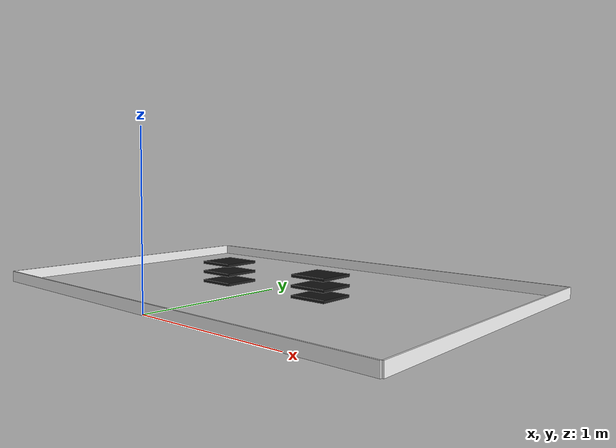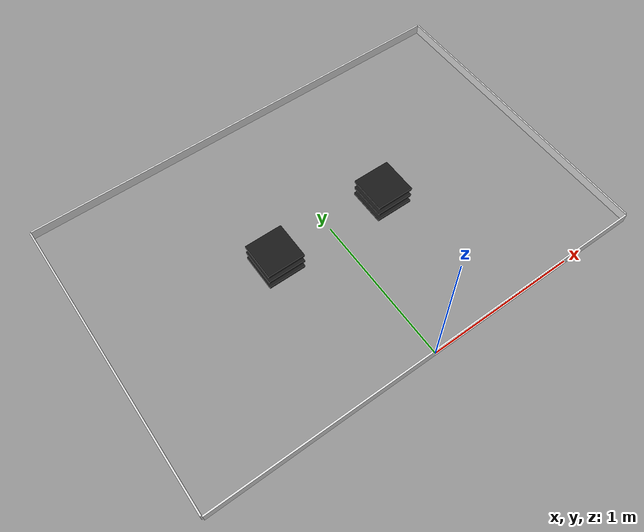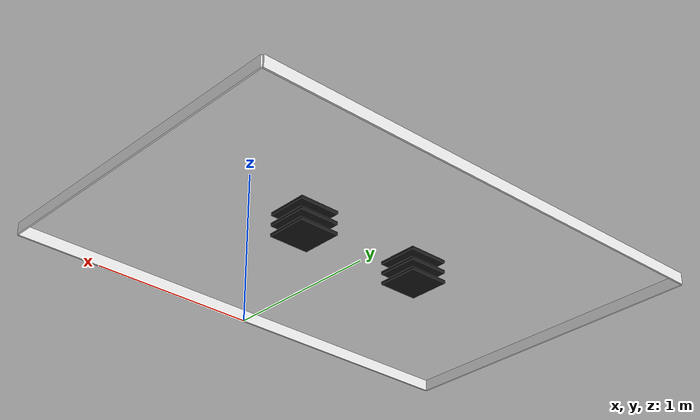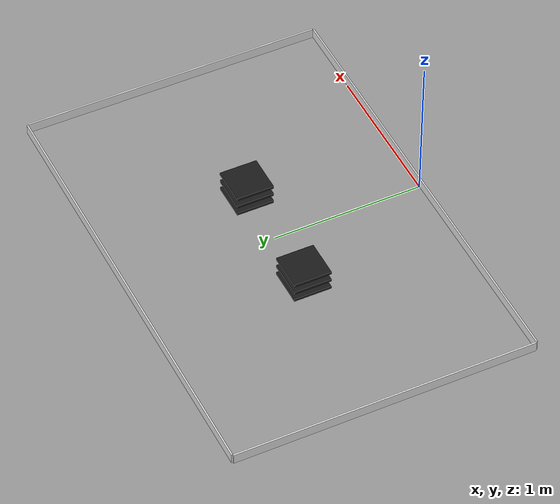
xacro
<?xml version="1.0"?>

<!-- XML namespaces -->
<robot xmlns:sensor="http://playerstage.sourceforge.net/gazebo/xmlschema/#sensor"
       xmlns:controller="http://playerstage.sourceforge.net/gazebo/xmlschema/#controller"
       xmlns:interface="http://playerstage.sourceforge.net/gazebo/xmlschema/#interface"
       xmlns:xacro="http://ros.org/wiki/xacro"
	   name="indomptable">

	<xacro:macro name="cyan1">
		<material name="cyan1">
			<color rgba="0 0.9 0.9 1.0"/>
		</material>
	</xacro:macro>

	<xacro:macro name="cyan2">
		<material name="cyan2">
	     <color rgba="0 0.7 0.7 1.0"/>
		</material>
	</xacro:macro>

	<xacro:macro name="cyan3">
		<material name="cyan3">
	     <color rgba="0 0.5 0.5 1.0"/>
		</material>
	</xacro:macro>

	<xacro:macro name="black">
		<material name="black">
			<color rgba="0.1 0.1 0.1 1.0"/>
		</material>
	</xacro:macro>

	<xacro:macro name="black1">
		<material name="black1">
			<color rgba="0.2 0.2 0.2 1.0"/>
		</material>
	</xacro:macro>

	<xacro:macro name="yellow2">
		<material name="yellow2">
			<color rgba="0.8 0.8 0 1.0"/>
		</material>
	</xacro:macro>

	<xacro:macro name="green1">
		<material name="green1">
			<color rgba="0 1 0 1.0"/>
		</material>
	</xacro:macro>

	<xacro:macro name="green2">
		<material name="green2">
			<color rgba="0.1 0.8 0 1.0"/>
		</material>
	</xacro:macro>

	<xacro:macro name="green3">
		<material name="green3">
			<color rgba="0.1 0.5 0.1 1.0"/>
		</material>
	</xacro:macro>

	<xacro:macro name="grey1">
		<material name="grey1">
			<color rgba="0.9 0.9 0.9 1.0"/>
		</material>
	</xacro:macro>

	<xacro:macro name="grey2">
		<material name="grey2">
			<color rgba="0.6 0.6 0.6 1.0"/>
		</material>
	</xacro:macro>

	<xacro:macro name="grey3">
		<material name="grey3">
			<color rgba="0.8 0.8 0.8 1.0"/>
		</material>
	</xacro:macro>

	<xacro:macro name="blue1">
		<material name="blue1">
			<color rgba="0 0 0.9 1.0"/>
		</material>
	</xacro:macro>

	<xacro:macro name="ax12_color">
		<material name="ax12_color">
			<color rgba="0.1 0.1 0.1 1.0"/>
		</material>
	</xacro:macro>

	<xacro:macro name="bracket_color">
		<material name="bracket_color">
			<color rgba="0.9 0.9 0.9 1.0"/>
		</material>
	</xacro:macro>

	<xacro:macro name="ax12" params="name xyz rpy">
		<link name="${name}">
			<visual>
				<origin xyz="${xyz}" rpy="${rpy}" />
				<geometry>
					<box size="0.5 0.32 0.38" />
				</geometry>
				<material name="black1">
					<color rgba="0.2 0.2 0.2 1.0"/>
				</material>
             </visual>
             <collision>
				<origin xyz="${xyz}" rpy="${rpy}" />
					<geometry>
						<box size="0.5 0.32 0.38" />
					</geometry>
             </collision>
             <xacro:default_inertial mass="0.055" />
        </link>
        <xacro:default_gazebo name="${name}" material="Gazebo/FlatBlack" />
	</xacro:macro>

	<xacro:macro name="bracket1" params="name xyz rpy">
		<link name="${name}">
			<visual>
				<origin xyz="${xyz}" rpy="${rpy}" />
				<geometry>
					<box size="0.05 0.025 0.038" />
				</geometry>
				<material name="black1">
					<color rgba="0.2 0.2 0.2 1.0"/>
				</material>
             </visual>
             <collision>
				<origin xyz="${xyz}" rpy="${rpy}" />
					<geometry>
						<box size="0.05 0.025 0.038" />
					</geometry>
             </collision>
             <xacro:default_inertial mass="0.02" />
        </link>
        <xacro:default_gazebo name="${name}" material="Gazebo/WhiteEmissive" />
	</xacro:macro>

	<xacro:macro name="my_box" params="name lwh xyz rpy mass material *rviz_color">
		<link name="${name}">
			<visual>
				<origin xyz="${xyz}" rpy="${rpy}" />
				<geometry>
					<box size="${lwh}" />
				</geometry>
			    <xacro:insert_block name="rviz_color" />
             </visual>
             <collision>
				<origin xyz="${xyz}" rpy="${rpy}" />
					<geometry>
						<box size="${lwh}" />
					</geometry>
             </collision>
             <xacro:default_inertial mass="${mass}" />
        </link>
        <xacro:default_gazebo name="${name}" material="${material}" />
	</xacro:macro>

	<xacro:macro name="my_cylinder" params="name l r xyz rpy mass material *rviz_color">
		<link name="${name}">
			<visual>
				<origin xyz="${xyz}" rpy="${rpy}" />
				<geometry>
					<cylinder length="${l}" radius="${r}" />
				</geometry>
            	<xacro:insert_block name="rviz_color" />
            </visual>
            <collision>
				<origin xyz="${xyz}" rpy="${rpy}" />
					<geometry>
						<cylinder length="${l}" radius="${r}" />
					</geometry>
            </collision>
            <xacro:default_inertial mass="${mass}" />
        </link>
        <xacro:default_gazebo name="${name}" material="${material}" />
	</xacro:macro>

    <xacro:macro name="default_inertial" params="mass">
		<inertial>
			<mass value="${mass}" />
			<inertia ixx="0.001" ixy="0.0" ixz="0.0"
                     iyy="0.001" iyz="0.0"
                     izz="0.001" />
			</inertial>
    </xacro:macro>

    <xacro:macro name="default_gazebo" params="name material">
 		<gazebo reference="${name}">
			<material>${material}</material>
			<selfCollide>false</selfCollide>
			<turnGravityOff>true</turnGravityOff>
		</gazebo>
    </xacro:macro>

        <!-- ============================   Totem   ============================ -->

	<link name="odom" />

        <xacro:my_box name="totem1_link" lwh="0.25 0.25 0.018" xyz="0 0 0" rpy="0 0 0" mass="0.5" material="Gazebo/FlatBlack">
                <xacro:black />
        </xacro:my_box>

        <xacro:my_box name="totem2_link" lwh="0.25 0.25 0.018" xyz="0 0 0" rpy="0 0 0" mass="0.5" material="Gazebo/FlatBlack">
                <xacro:black />
        </xacro:my_box>

        <xacro:my_box name="totem3_link" lwh="0.25 0.25 0.018" xyz="0 0 0" rpy="0 0 0" mass="0.5" material="Gazebo/FlatBlack">
                <xacro:black />
        </xacro:my_box>

        <xacro:my_box name="totem4_link" lwh="0.25 0.25 0.018" xyz="0 0 0" rpy="0 0 0" mass="0.5" material="Gazebo/FlatBlack">
                <xacro:black />
        </xacro:my_box>

        <xacro:my_box name="totem5_link" lwh="0.25 0.25 0.018" xyz="0 0 0" rpy="0 0 0" mass="0.5" material="Gazebo/FlatBlack">
                <xacro:black />
        </xacro:my_box>

        <xacro:my_box name="totem6_link" lwh="0.25 0.25 0.018" xyz="0 0 0" rpy="0 0 0" mass="0.5" material="Gazebo/FlatBlack">
                <xacro:black />
        </xacro:my_box>

        <!-- ============================   Border   ============================ -->

        <xacro:my_box name="up_link" lwh="3.0 0.01 0.07" xyz="0 0 0" rpy="0 0 0" mass="0.5" material="Gazebo/FlatBlack">
                <xacro:grey1 />
        </xacro:my_box>

        <xacro:my_box name="down_link" lwh="3.0 0.01 0.07" xyz="0 0 0" rpy="0 0 0" mass="0.5" material="Gazebo/FlatBlack">
                <xacro:grey1 />
        </xacro:my_box>

        <xacro:my_box name="left_link" lwh="0.01 2.0 0.07" xyz="0 0 0" rpy="0 0 0" mass="0.5" material="Gazebo/FlatBlack">
                <xacro:grey1 />
        </xacro:my_box>

        <xacro:my_box name="right_link" lwh="0.01 2.0 0.07" xyz="0 0 0" rpy="0 0 0" mass="0.5" material="Gazebo/FlatBlack">
                <xacro:grey1 />
        </xacro:my_box>

	<!-- =================== Joint Definitions ==================== -->

        <joint name="totem1_joint" type="fixed">
        <parent link="odom" />
        <child link="totem1_link" />
        <origin xyz="0.4 1 0.009" rpy="0 0 0" />
        </joint>

        <joint name="totem2_joint" type="fixed">
        <parent link="totem1_link" />
        <child link="totem2_link" />
        <origin xyz="0 0 0.063" rpy="0 0 0" />
        </joint>

        <joint name="totem3_joint" type="fixed">
        <parent link="totem2_link" />
        <child link="totem3_link" />
        <origin xyz="0 0 0.064" rpy="0 0 0" />
        </joint>

        <joint name="totem4_joint" type="fixed">
        <parent link="odom" />
        <child link="totem4_link" />
        <origin xyz="-0.4 1 0.009" rpy="0 0 0" />
        </joint>

        <joint name="totem5_joint" type="fixed">
        <parent link="totem4_link" />
        <child link="totem5_link" />
        <origin xyz="0 0 0.063" rpy="0 0 0" />
        </joint>

        <joint name="totem6_joint" type="fixed">
        <parent link="totem5_link" />
        <child link="totem6_link" />
        <origin xyz="0 0 0.064" rpy="0 0 0" />
        </joint>

        <joint name="up_joint" type="fixed">
        <parent link="odom" />
        <child link="up_link" />
        <origin xyz="0.0 -0.005 0.035" rpy="0 0 0" />
        </joint>

        <joint name="down_joint" type="fixed">
        <parent link="odom" />
        <child link="down_link" />
        <origin xyz="0.0 2.005 0.035" rpy="0 0 0" />
        </joint>

        <joint name="left_joint" type="fixed">
        <parent link="odom" />
        <child link="left_link" />
        <origin xyz="-1.505 1.0 0.035" rpy="0 0 0" />
        </joint>

        <joint name="right_joint" type="fixed">
        <parent link="odom" />
        <child link="right_link" />
        <origin xyz="1.505 1.0 0.035" rpy="0 0 0" />
        </joint>

	<gazebo reference="indomptable">
  	</gazebo>
</robot>
